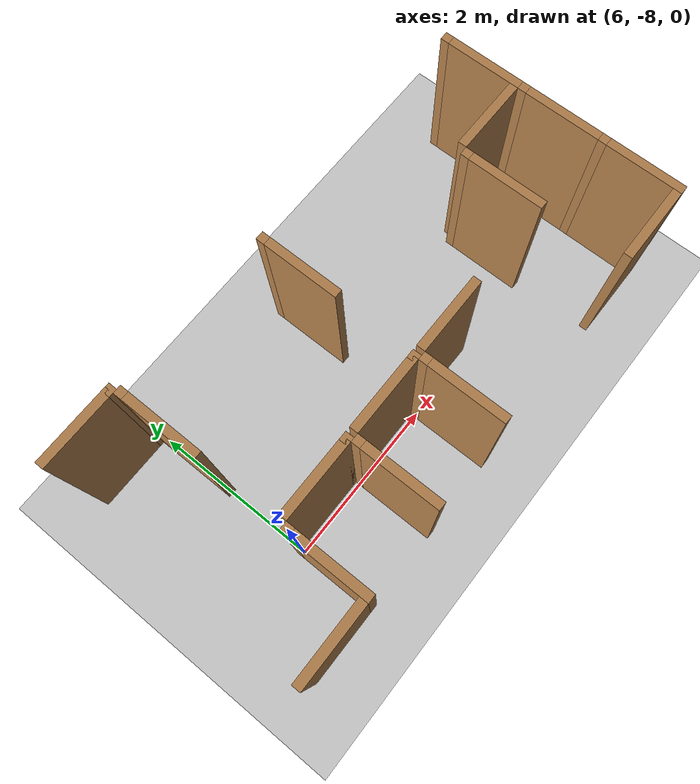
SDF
<sdf version="1.6">
 <world name="default">
  <include><uri>model://sun</uri></include>
  <model name="ground_plane">
   <static>true</static>
   <link name="link">
    <collision name="collision"><geometry><plane><size>12.0 12.0</size></plane></geometry></collision>
    <visual name="visual">
     <cast_shadows>false</cast_shadows>
     <geometry><plane><size>12.0 12.0</size></plane></geometry>
     <material>
      <script><uri>file://media/materials/scripts/gazebo.material</uri><name>Gazebo/Grey</name></script>
     </material>
    </visual>
   </link>
   <pose>6.0 -6.0 0 0 0 0</pose>
  </model>
  <model name="vwall_6_6">
   <pose>6.0 -6.5 1.0 0 0 0</pose>
   <link name="link">
    <collision name="collision"><geometry><box><size>0.1 0.9 2</size></box></geometry></collision>
    <visual name="visual">
     <geometry><box><size>0.1 0.9 2</size></box></geometry>
     <material>
      <script><uri>file://media/materials/scripts/gazebo.material</uri><name>Gazebo/Wood</name></script>
     </material>
    </visual>
   </link>
  </model>
  <model name="joint_6.0_-6.0">
   <pose>6.0 -6.0 1.0 0 0 0</pose>
   <link name="link">
    <collision name="collision"><geometry><box><size>0.1 0.1 2</size></box></geometry></collision>
    <visual name="visual">
     <geometry><box><size>0.1 0.1 2</size></box></geometry>
     <material>
      <script><uri>file://media/materials/scripts/gazebo.material</uri><name>Gazebo/Wood</name></script>
     </material>
    </visual>
   </link>
  </model>
  <model name="vwall_6_8">
   <pose>8.0 -6.5 1.0 0 0 0</pose>
   <link name="link">
    <collision name="collision"><geometry><box><size>0.1 0.9 2</size></box></geometry></collision>
    <visual name="visual">
     <geometry><box><size>0.1 0.9 2</size></box></geometry>
     <material>
      <script><uri>file://media/materials/scripts/gazebo.material</uri><name>Gazebo/Wood</name></script>
     </material>
    </visual>
   </link>
  </model>
  <model name="joint_8.0_-6.0">
   <pose>8.0 -6.0 1.0 0 0 0</pose>
   <link name="link">
    <collision name="collision"><geometry><box><size>0.1 0.1 2</size></box></geometry></collision>
    <visual name="visual">
     <geometry><box><size>0.1 0.1 2</size></box></geometry>
     <material>
      <script><uri>file://media/materials/scripts/gazebo.material</uri><name>Gazebo/Wood</name></script>
     </material>
    </visual>
   </link>
  </model>
  <model name="vwall_6_11">
   <pose>11.0 -6.5 1.0 0 0 0</pose>
   <link name="link">
    <collision name="collision"><geometry><box><size>0.1 0.9 2</size></box></geometry></collision>
    <visual name="visual">
     <geometry><box><size>0.1 0.9 2</size></box></geometry>
     <material>
      <script><uri>file://media/materials/scripts/gazebo.material</uri><name>Gazebo/Wood</name></script>
     </material>
    </visual>
   </link>
  </model>
  <model name="joint_11.0_-6.0">
   <pose>11.0 -6.0 1.0 0 0 0</pose>
   <link name="link">
    <collision name="collision"><geometry><box><size>0.1 0.1 2</size></box></geometry></collision>
    <visual name="visual">
     <geometry><box><size>0.1 0.1 2</size></box></geometry>
     <material>
      <script><uri>file://media/materials/scripts/gazebo.material</uri><name>Gazebo/Wood</name></script>
     </material>
    </visual>
   </link>
  </model>
  <model name="vwall_7_10">
   <pose>10.0 -7.5 1.0 0 0 0</pose>
   <link name="link">
    <collision name="collision"><geometry><box><size>0.1 0.9 2</size></box></geometry></collision>
    <visual name="visual">
     <geometry><box><size>0.1 0.9 2</size></box></geometry>
     <material>
      <script><uri>file://media/materials/scripts/gazebo.material</uri><name>Gazebo/Wood</name></script>
     </material>
    </visual>
   </link>
  </model>
  <model name="joint_10.0_-7.0">
   <pose>10.0 -7.0 1.0 0 0 0</pose>
   <link name="link">
    <collision name="collision"><geometry><box><size>0.1 0.1 2</size></box></geometry></collision>
    <visual name="visual">
     <geometry><box><size>0.1 0.1 2</size></box></geometry>
     <material>
      <script><uri>file://media/materials/scripts/gazebo.material</uri><name>Gazebo/Wood</name></script>
     </material>
    </visual>
   </link>
  </model>
  <model name="vwall_7_11">
   <pose>11.0 -7.5 1.0 0 0 0</pose>
   <link name="link">
    <collision name="collision"><geometry><box><size>0.1 0.9 2</size></box></geometry></collision>
    <visual name="visual">
     <geometry><box><size>0.1 0.9 2</size></box></geometry>
     <material>
      <script><uri>file://media/materials/scripts/gazebo.material</uri><name>Gazebo/Wood</name></script>
     </material>
    </visual>
   </link>
  </model>
  <model name="joint_11.0_-7.0">
   <pose>11.0 -7.0 1.0 0 0 0</pose>
   <link name="link">
    <collision name="collision"><geometry><box><size>0.1 0.1 2</size></box></geometry></collision>
    <visual name="visual">
     <geometry><box><size>0.1 0.1 2</size></box></geometry>
     <material>
      <script><uri>file://media/materials/scripts/gazebo.material</uri><name>Gazebo/Wood</name></script>
     </material>
    </visual>
   </link>
  </model>
  <model name="vwall_8_6">
   <pose>6.0 -8.5 1.0 0 0 0</pose>
   <link name="link">
    <collision name="collision"><geometry><box><size>0.1 0.9 2</size></box></geometry></collision>
    <visual name="visual">
     <geometry><box><size>0.1 0.9 2</size></box></geometry>
     <material>
      <script><uri>file://media/materials/scripts/gazebo.material</uri><name>Gazebo/Wood</name></script>
     </material>
    </visual>
   </link>
  </model>
  <model name="joint_6.0_-8.0">
   <pose>6.0 -8.0 1.0 0 0 0</pose>
   <link name="link">
    <collision name="collision"><geometry><box><size>0.1 0.1 2</size></box></geometry></collision>
    <visual name="visual">
     <geometry><box><size>0.1 0.1 2</size></box></geometry>
     <material>
      <script><uri>file://media/materials/scripts/gazebo.material</uri><name>Gazebo/Wood</name></script>
     </material>
    </visual>
   </link>
  </model>
  <model name="vwall_8_7">
   <pose>7.0 -8.5 1.0 0 0 0</pose>
   <link name="link">
    <collision name="collision"><geometry><box><size>0.1 0.9 2</size></box></geometry></collision>
    <visual name="visual">
     <geometry><box><size>0.1 0.9 2</size></box></geometry>
     <material>
      <script><uri>file://media/materials/scripts/gazebo.material</uri><name>Gazebo/Wood</name></script>
     </material>
    </visual>
   </link>
  </model>
  <model name="joint_7.0_-8.0">
   <pose>7.0 -8.0 1.0 0 0 0</pose>
   <link name="link">
    <collision name="collision"><geometry><box><size>0.1 0.1 2</size></box></geometry></collision>
    <visual name="visual">
     <geometry><box><size>0.1 0.1 2</size></box></geometry>
     <material>
      <script><uri>file://media/materials/scripts/gazebo.material</uri><name>Gazebo/Wood</name></script>
     </material>
    </visual>
   </link>
  </model>
  <model name="vwall_8_8">
   <pose>8.0 -8.5 1.0 0 0 0</pose>
   <link name="link">
    <collision name="collision"><geometry><box><size>0.1 0.9 2</size></box></geometry></collision>
    <visual name="visual">
     <geometry><box><size>0.1 0.9 2</size></box></geometry>
     <material>
      <script><uri>file://media/materials/scripts/gazebo.material</uri><name>Gazebo/Wood</name></script>
     </material>
    </visual>
   </link>
  </model>
  <model name="joint_8.0_-8.0">
   <pose>8.0 -8.0 1.0 0 0 0</pose>
   <link name="link">
    <collision name="collision"><geometry><box><size>0.1 0.1 2</size></box></geometry></collision>
    <visual name="visual">
     <geometry><box><size>0.1 0.1 2</size></box></geometry>
     <material>
      <script><uri>file://media/materials/scripts/gazebo.material</uri><name>Gazebo/Wood</name></script>
     </material>
    </visual>
   </link>
  </model>
  <model name="vwall_8_11">
   <pose>11.0 -8.5 1.0 0 0 0</pose>
   <link name="link">
    <collision name="collision"><geometry><box><size>0.1 0.9 2</size></box></geometry></collision>
    <visual name="visual">
     <geometry><box><size>0.1 0.9 2</size></box></geometry>
     <material>
      <script><uri>file://media/materials/scripts/gazebo.material</uri><name>Gazebo/Wood</name></script>
     </material>
    </visual>
   </link>
  </model>
  <model name="joint_11.0_-8.0">
   <pose>11.0 -8.0 1.0 0 0 0</pose>
   <link name="link">
    <collision name="collision"><geometry><box><size>0.1 0.1 2</size></box></geometry></collision>
    <visual name="visual">
     <geometry><box><size>0.1 0.1 2</size></box></geometry>
     <material>
      <script><uri>file://media/materials/scripts/gazebo.material</uri><name>Gazebo/Wood</name></script>
     </material>
    </visual>
   </link>
  </model>
  <model name="hwall_5_5">
   <pose>5.5 -5.9 1.0 0 0 0</pose>
   <link name="link">
    <collision name="collision"><geometry><box><size>0.9 0.1 2</size></box></geometry></collision>
    <visual name="visual">
     <geometry><box><size>0.9 0.1 2</size></box></geometry>
     <material>
      <script><uri>file://media/materials/scripts/gazebo.material</uri><name>Gazebo/Wood</name></script>
     </material>
    </visual>
   </link>
  </model>
  <model name="joint_5.95_-5.9">
   <pose>5.95 -5.9 1.0 0 0 0</pose>
   <link name="link">
    <collision name="collision"><geometry><box><size>0.1 0.1 2</size></box></geometry></collision>
    <visual name="visual">
     <geometry><box><size>0.1 0.1 2</size></box></geometry>
     <material>
      <script><uri>file://media/materials/scripts/gazebo.material</uri><name>Gazebo/Wood</name></script>
     </material>
    </visual>
   </link>
  </model>
  <model name="hwall_6_10">
   <pose>10.5 -6.9 1.0 0 0 0</pose>
   <link name="link">
    <collision name="collision"><geometry><box><size>0.9 0.1 2</size></box></geometry></collision>
    <visual name="visual">
     <geometry><box><size>0.9 0.1 2</size></box></geometry>
     <material>
      <script><uri>file://media/materials/scripts/gazebo.material</uri><name>Gazebo/Wood</name></script>
     </material>
    </visual>
   </link>
  </model>
  <model name="hwall_7_6">
   <pose>6.5 -7.9 1.0 0 0 0</pose>
   <link name="link">
    <collision name="collision"><geometry><box><size>0.9 0.1 2</size></box></geometry></collision>
    <visual name="visual">
     <geometry><box><size>0.9 0.1 2</size></box></geometry>
     <material>
      <script><uri>file://media/materials/scripts/gazebo.material</uri><name>Gazebo/Wood</name></script>
     </material>
    </visual>
   </link>
  </model>
  <model name="joint_6.95_-7.9">
   <pose>6.95 -7.9 1.0 0 0 0</pose>
   <link name="link">
    <collision name="collision"><geometry><box><size>0.1 0.1 2</size></box></geometry></collision>
    <visual name="visual">
     <geometry><box><size>0.1 0.1 2</size></box></geometry>
     <material>
      <script><uri>file://media/materials/scripts/gazebo.material</uri><name>Gazebo/Wood</name></script>
     </material>
    </visual>
   </link>
  </model>
  <model name="hwall_7_7">
   <pose>7.5 -7.9 1.0 0 0 0</pose>
   <link name="link">
    <collision name="collision"><geometry><box><size>0.9 0.1 2</size></box></geometry></collision>
    <visual name="visual">
     <geometry><box><size>0.9 0.1 2</size></box></geometry>
     <material>
      <script><uri>file://media/materials/scripts/gazebo.material</uri><name>Gazebo/Wood</name></script>
     </material>
    </visual>
   </link>
  </model>
  <model name="joint_7.95_-7.9">
   <pose>7.95 -7.9 1.0 0 0 0</pose>
   <link name="link">
    <collision name="collision"><geometry><box><size>0.1 0.1 2</size></box></geometry></collision>
    <visual name="visual">
     <geometry><box><size>0.1 0.1 2</size></box></geometry>
     <material>
      <script><uri>file://media/materials/scripts/gazebo.material</uri><name>Gazebo/Wood</name></script>
     </material>
    </visual>
   </link>
  </model>
  <model name="hwall_7_8">
   <pose>8.5 -7.9 1.0 0 0 0</pose>
   <link name="link">
    <collision name="collision"><geometry><box><size>0.9 0.1 2</size></box></geometry></collision>
    <visual name="visual">
     <geometry><box><size>0.9 0.1 2</size></box></geometry>
     <material>
      <script><uri>file://media/materials/scripts/gazebo.material</uri><name>Gazebo/Wood</name></script>
     </material>
    </visual>
   </link>
  </model>
  <model name="hwall_8_5">
   <pose>5.5 -8.9 1.0 0 0 0</pose>
   <link name="link">
    <collision name="collision"><geometry><box><size>0.9 0.1 2</size></box></geometry></collision>
    <visual name="visual">
     <geometry><box><size>0.9 0.1 2</size></box></geometry>
     <material>
      <script><uri>file://media/materials/scripts/gazebo.material</uri><name>Gazebo/Wood</name></script>
     </material>
    </visual>
   </link>
  </model>
  <model name="hwall_8_10">
   <pose>10.5 -8.9 1.0 0 0 0</pose>
   <link name="link">
    <collision name="collision"><geometry><box><size>0.9 0.1 2</size></box></geometry></collision>
    <visual name="visual">
     <geometry><box><size>0.9 0.1 2</size></box></geometry>
     <material>
      <script><uri>file://media/materials/scripts/gazebo.material</uri><name>Gazebo/Wood</name></script>
     </material>
    </visual>
   </link>
  </model>
 </world>
</sdf>
